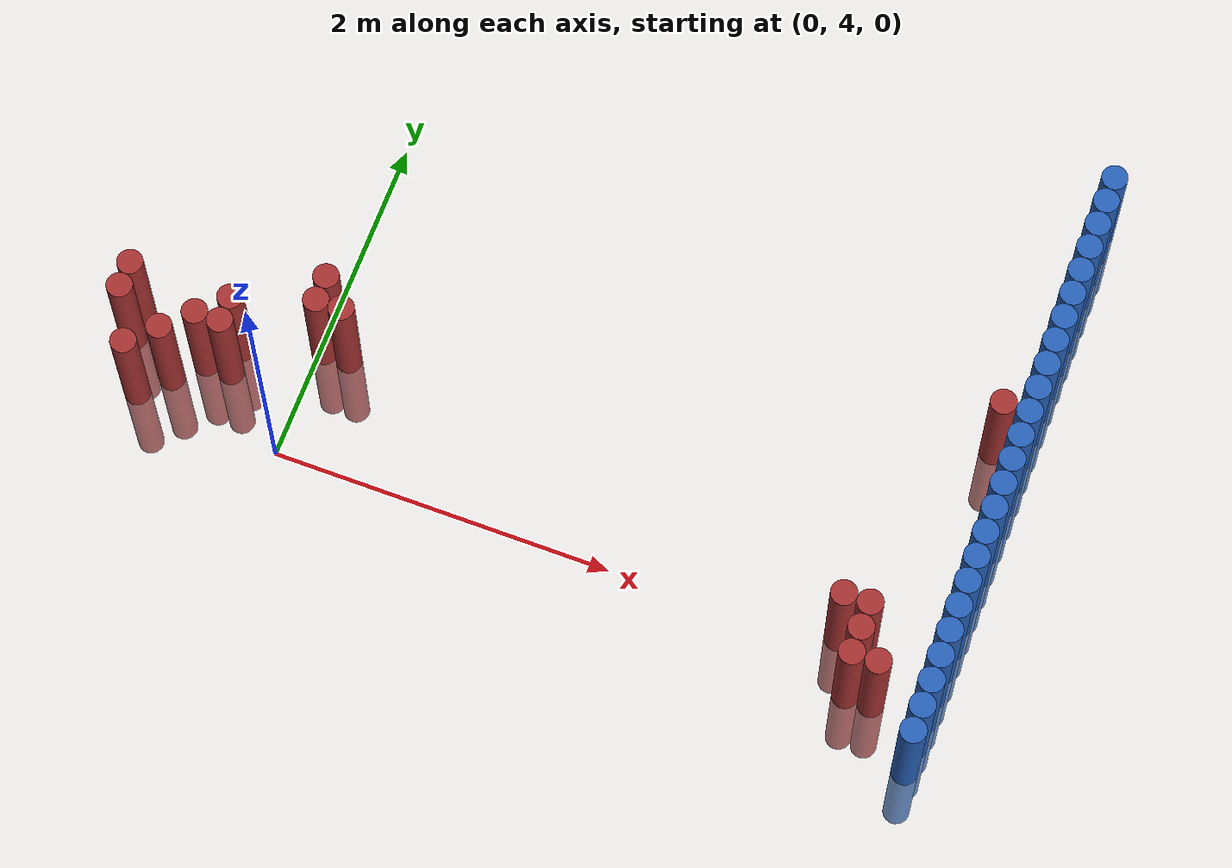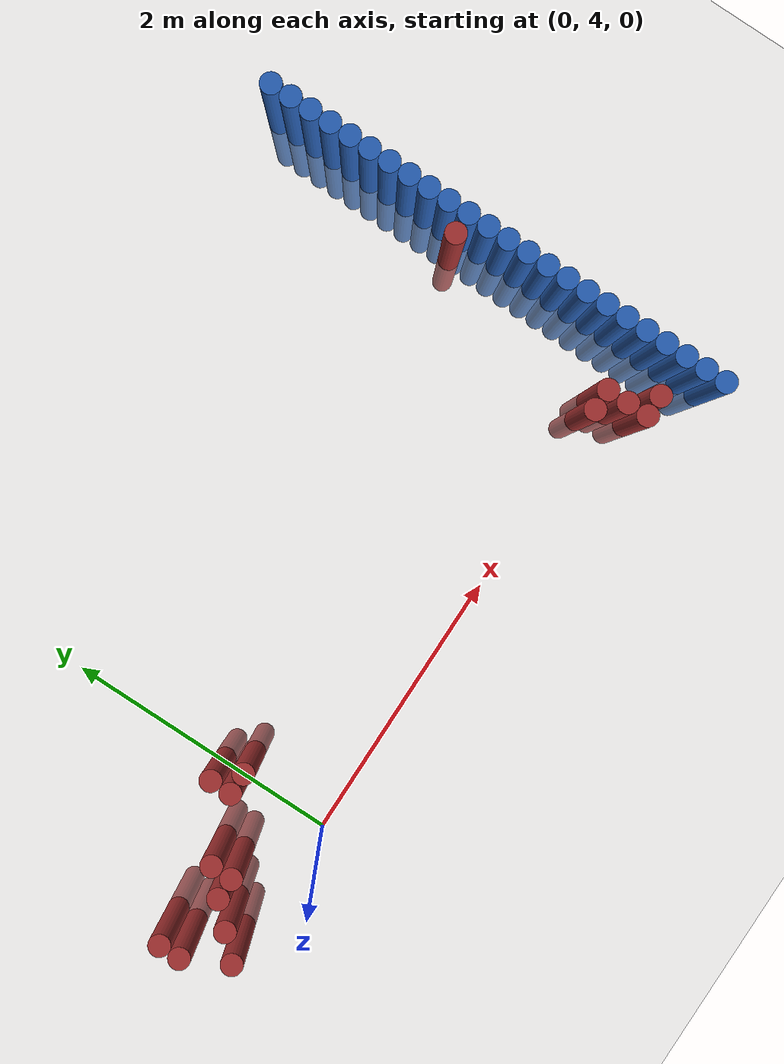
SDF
<sdf version="1.6">
 <world name="default">
  <model name="ground_plane">
   <static>1</static>
   <link name="link">
    <collision name="collision">
     <geometry><plane><normal>0 0 1</normal><size>100 100</size></plane></geometry>
     <surface><friction><ode><mu>100</mu><mu2>50</mu2></ode></friction></surface>
    </collision>
    <visual name="visual">
     <cast_shadows>0</cast_shadows>
     <geometry><plane><normal>0 0 1</normal><size>100 100</size></plane></geometry>
     <material>
      <script><uri>file://media/materials/scripts/gazebo.material</uri><name>Gazebo/Grey</name></script>
     </material>
    </visual>
   </link>
  </model>
  <model name="unit_cylinder_162">
   <static>1</static>
   <pose>3.925000 3.625000 0.000000 0.000000 0.000000 0.000000</pose>
   <link name="link">
    <inertial>
     <mass>1</mass>
     <inertia><ixx>0.145833</ixx><ixy>0</ixy><ixz>0</ixz><iyy>0.145833</iyy><iyz>0</iyz><izz>0.125</izz></inertia>
    </inertial>
    <collision name="collision">
     <geometry><cylinder><radius>0.075000</radius><length>1.5</length></cylinder></geometry>
    </collision>
    <visual name="visual">
     <geometry><cylinder><radius>0.075000</radius><length>1.5</length></cylinder></geometry>
     <material>
      <ambient>0.152000 0.379000 0.720000 1</ambient>
      <diffuse>0.152000 0.379000 0.720000 1</diffuse>
     </material>
     <material>
      <script><name>Gazebo/Grey</name><uri>file://media/materials/scripts/gazebo.material</uri></script>
     </material>
    </visual>
   </link>
  </model>
  <model name="unit_cylinder_164">
   <static>1</static>
   <pose>3.925000 3.775000 0.000000 0.000000 0.000000 0.000000</pose>
   <link name="link">
    <inertial>
     <mass>1</mass>
     <inertia><ixx>0.145833</ixx><ixy>0</ixy><ixz>0</ixz><iyy>0.145833</iyy><iyz>0</iyz><izz>0.125</izz></inertia>
    </inertial>
    <collision name="collision">
     <geometry><cylinder><radius>0.075000</radius><length>1.5</length></cylinder></geometry>
    </collision>
    <visual name="visual">
     <geometry><cylinder><radius>0.075000</radius><length>1.5</length></cylinder></geometry>
     <material>
      <ambient>0.152000 0.379000 0.720000 1</ambient>
      <diffuse>0.152000 0.379000 0.720000 1</diffuse>
     </material>
     <material>
      <script><name>Gazebo/Grey</name><uri>file://media/materials/scripts/gazebo.material</uri></script>
     </material>
    </visual>
   </link>
  </model>
  <model name="unit_cylinder_166">
   <static>1</static>
   <pose>3.925000 3.925000 0.000000 0.000000 0.000000 0.000000</pose>
   <link name="link">
    <inertial>
     <mass>1</mass>
     <inertia><ixx>0.145833</ixx><ixy>0</ixy><ixz>0</ixz><iyy>0.145833</iyy><iyz>0</iyz><izz>0.125</izz></inertia>
    </inertial>
    <collision name="collision">
     <geometry><cylinder><radius>0.075000</radius><length>1.5</length></cylinder></geometry>
    </collision>
    <visual name="visual">
     <geometry><cylinder><radius>0.075000</radius><length>1.5</length></cylinder></geometry>
     <material>
      <ambient>0.152000 0.379000 0.720000 1</ambient>
      <diffuse>0.152000 0.379000 0.720000 1</diffuse>
     </material>
     <material>
      <script><name>Gazebo/Grey</name><uri>file://media/materials/scripts/gazebo.material</uri></script>
     </material>
    </visual>
   </link>
  </model>
  <model name="unit_cylinder_168">
   <static>1</static>
   <pose>3.925000 4.075000 0.000000 0.000000 0.000000 0.000000</pose>
   <link name="link">
    <inertial>
     <mass>1</mass>
     <inertia><ixx>0.145833</ixx><ixy>0</ixy><ixz>0</ixz><iyy>0.145833</iyy><iyz>0</iyz><izz>0.125</izz></inertia>
    </inertial>
    <collision name="collision">
     <geometry><cylinder><radius>0.075000</radius><length>1.5</length></cylinder></geometry>
    </collision>
    <visual name="visual">
     <geometry><cylinder><radius>0.075000</radius><length>1.5</length></cylinder></geometry>
     <material>
      <ambient>0.152000 0.379000 0.720000 1</ambient>
      <diffuse>0.152000 0.379000 0.720000 1</diffuse>
     </material>
     <material>
      <script><name>Gazebo/Grey</name><uri>file://media/materials/scripts/gazebo.material</uri></script>
     </material>
    </visual>
   </link>
  </model>
  <model name="unit_cylinder_170">
   <static>1</static>
   <pose>3.925000 4.225000 0.000000 0.000000 0.000000 0.000000</pose>
   <link name="link">
    <inertial>
     <mass>1</mass>
     <inertia><ixx>0.145833</ixx><ixy>0</ixy><ixz>0</ixz><iyy>0.145833</iyy><iyz>0</iyz><izz>0.125</izz></inertia>
    </inertial>
    <collision name="collision">
     <geometry><cylinder><radius>0.075000</radius><length>1.5</length></cylinder></geometry>
    </collision>
    <visual name="visual">
     <geometry><cylinder><radius>0.075000</radius><length>1.5</length></cylinder></geometry>
     <material>
      <ambient>0.152000 0.379000 0.720000 1</ambient>
      <diffuse>0.152000 0.379000 0.720000 1</diffuse>
     </material>
     <material>
      <script><name>Gazebo/Grey</name><uri>file://media/materials/scripts/gazebo.material</uri></script>
     </material>
    </visual>
   </link>
  </model>
  <model name="unit_cylinder_172">
   <static>1</static>
   <pose>3.925000 4.375000 0.000000 0.000000 0.000000 0.000000</pose>
   <link name="link">
    <inertial>
     <mass>1</mass>
     <inertia><ixx>0.145833</ixx><ixy>0</ixy><ixz>0</ixz><iyy>0.145833</iyy><iyz>0</iyz><izz>0.125</izz></inertia>
    </inertial>
    <collision name="collision">
     <geometry><cylinder><radius>0.075000</radius><length>1.5</length></cylinder></geometry>
    </collision>
    <visual name="visual">
     <geometry><cylinder><radius>0.075000</radius><length>1.5</length></cylinder></geometry>
     <material>
      <ambient>0.152000 0.379000 0.720000 1</ambient>
      <diffuse>0.152000 0.379000 0.720000 1</diffuse>
     </material>
     <material>
      <script><name>Gazebo/Grey</name><uri>file://media/materials/scripts/gazebo.material</uri></script>
     </material>
    </visual>
   </link>
  </model>
  <model name="unit_cylinder_174">
   <static>1</static>
   <pose>3.925000 4.525000 0.000000 0.000000 0.000000 0.000000</pose>
   <link name="link">
    <inertial>
     <mass>1</mass>
     <inertia><ixx>0.145833</ixx><ixy>0</ixy><ixz>0</ixz><iyy>0.145833</iyy><iyz>0</iyz><izz>0.125</izz></inertia>
    </inertial>
    <collision name="collision">
     <geometry><cylinder><radius>0.075000</radius><length>1.5</length></cylinder></geometry>
    </collision>
    <visual name="visual">
     <geometry><cylinder><radius>0.075000</radius><length>1.5</length></cylinder></geometry>
     <material>
      <ambient>0.152000 0.379000 0.720000 1</ambient>
      <diffuse>0.152000 0.379000 0.720000 1</diffuse>
     </material>
     <material>
      <script><name>Gazebo/Grey</name><uri>file://media/materials/scripts/gazebo.material</uri></script>
     </material>
    </visual>
   </link>
  </model>
  <model name="unit_cylinder_176">
   <static>1</static>
   <pose>3.925000 4.675000 0.000000 0.000000 0.000000 0.000000</pose>
   <link name="link">
    <inertial>
     <mass>1</mass>
     <inertia><ixx>0.145833</ixx><ixy>0</ixy><ixz>0</ixz><iyy>0.145833</iyy><iyz>0</iyz><izz>0.125</izz></inertia>
    </inertial>
    <collision name="collision">
     <geometry><cylinder><radius>0.075000</radius><length>1.5</length></cylinder></geometry>
    </collision>
    <visual name="visual">
     <geometry><cylinder><radius>0.075000</radius><length>1.5</length></cylinder></geometry>
     <material>
      <ambient>0.152000 0.379000 0.720000 1</ambient>
      <diffuse>0.152000 0.379000 0.720000 1</diffuse>
     </material>
     <material>
      <script><name>Gazebo/Grey</name><uri>file://media/materials/scripts/gazebo.material</uri></script>
     </material>
    </visual>
   </link>
  </model>
  <model name="unit_cylinder_178">
   <static>1</static>
   <pose>3.925000 4.825000 0.000000 0.000000 0.000000 0.000000</pose>
   <link name="link">
    <inertial>
     <mass>1</mass>
     <inertia><ixx>0.145833</ixx><ixy>0</ixy><ixz>0</ixz><iyy>0.145833</iyy><iyz>0</iyz><izz>0.125</izz></inertia>
    </inertial>
    <collision name="collision">
     <geometry><cylinder><radius>0.075000</radius><length>1.5</length></cylinder></geometry>
    </collision>
    <visual name="visual">
     <geometry><cylinder><radius>0.075000</radius><length>1.5</length></cylinder></geometry>
     <material>
      <ambient>0.152000 0.379000 0.720000 1</ambient>
      <diffuse>0.152000 0.379000 0.720000 1</diffuse>
     </material>
     <material>
      <script><name>Gazebo/Grey</name><uri>file://media/materials/scripts/gazebo.material</uri></script>
     </material>
    </visual>
   </link>
  </model>
  <model name="unit_cylinder_180">
   <static>1</static>
   <pose>3.925000 4.975000 0.000000 0.000000 0.000000 0.000000</pose>
   <link name="link">
    <inertial>
     <mass>1</mass>
     <inertia><ixx>0.145833</ixx><ixy>0</ixy><ixz>0</ixz><iyy>0.145833</iyy><iyz>0</iyz><izz>0.125</izz></inertia>
    </inertial>
    <collision name="collision">
     <geometry><cylinder><radius>0.075000</radius><length>1.5</length></cylinder></geometry>
    </collision>
    <visual name="visual">
     <geometry><cylinder><radius>0.075000</radius><length>1.5</length></cylinder></geometry>
     <material>
      <ambient>0.152000 0.379000 0.720000 1</ambient>
      <diffuse>0.152000 0.379000 0.720000 1</diffuse>
     </material>
     <material>
      <script><name>Gazebo/Grey</name><uri>file://media/materials/scripts/gazebo.material</uri></script>
     </material>
    </visual>
   </link>
  </model>
  <model name="unit_cylinder_182">
   <static>1</static>
   <pose>3.925000 5.125000 0.000000 0.000000 0.000000 0.000000</pose>
   <link name="link">
    <inertial>
     <mass>1</mass>
     <inertia><ixx>0.145833</ixx><ixy>0</ixy><ixz>0</ixz><iyy>0.145833</iyy><iyz>0</iyz><izz>0.125</izz></inertia>
    </inertial>
    <collision name="collision">
     <geometry><cylinder><radius>0.075000</radius><length>1.5</length></cylinder></geometry>
    </collision>
    <visual name="visual">
     <geometry><cylinder><radius>0.075000</radius><length>1.5</length></cylinder></geometry>
     <material>
      <ambient>0.152000 0.379000 0.720000 1</ambient>
      <diffuse>0.152000 0.379000 0.720000 1</diffuse>
     </material>
     <material>
      <script><name>Gazebo/Grey</name><uri>file://media/materials/scripts/gazebo.material</uri></script>
     </material>
    </visual>
   </link>
  </model>
  <model name="unit_cylinder_184">
   <static>1</static>
   <pose>3.925000 5.275000 0.000000 0.000000 0.000000 0.000000</pose>
   <link name="link">
    <inertial>
     <mass>1</mass>
     <inertia><ixx>0.145833</ixx><ixy>0</ixy><ixz>0</ixz><iyy>0.145833</iyy><iyz>0</iyz><izz>0.125</izz></inertia>
    </inertial>
    <collision name="collision">
     <geometry><cylinder><radius>0.075000</radius><length>1.5</length></cylinder></geometry>
    </collision>
    <visual name="visual">
     <geometry><cylinder><radius>0.075000</radius><length>1.5</length></cylinder></geometry>
     <material>
      <ambient>0.152000 0.379000 0.720000 1</ambient>
      <diffuse>0.152000 0.379000 0.720000 1</diffuse>
     </material>
     <material>
      <script><name>Gazebo/Grey</name><uri>file://media/materials/scripts/gazebo.material</uri></script>
     </material>
    </visual>
   </link>
  </model>
  <model name="unit_cylinder_186">
   <static>1</static>
   <pose>3.925000 5.425000 0.000000 0.000000 0.000000 0.000000</pose>
   <link name="link">
    <inertial>
     <mass>1</mass>
     <inertia><ixx>0.145833</ixx><ixy>0</ixy><ixz>0</ixz><iyy>0.145833</iyy><iyz>0</iyz><izz>0.125</izz></inertia>
    </inertial>
    <collision name="collision">
     <geometry><cylinder><radius>0.075000</radius><length>1.5</length></cylinder></geometry>
    </collision>
    <visual name="visual">
     <geometry><cylinder><radius>0.075000</radius><length>1.5</length></cylinder></geometry>
     <material>
      <ambient>0.152000 0.379000 0.720000 1</ambient>
      <diffuse>0.152000 0.379000 0.720000 1</diffuse>
     </material>
     <material>
      <script><name>Gazebo/Grey</name><uri>file://media/materials/scripts/gazebo.material</uri></script>
     </material>
    </visual>
   </link>
  </model>
  <model name="unit_cylinder_188">
   <static>1</static>
   <pose>3.925000 5.575000 0.000000 0.000000 0.000000 0.000000</pose>
   <link name="link">
    <inertial>
     <mass>1</mass>
     <inertia><ixx>0.145833</ixx><ixy>0</ixy><ixz>0</ixz><iyy>0.145833</iyy><iyz>0</iyz><izz>0.125</izz></inertia>
    </inertial>
    <collision name="collision">
     <geometry><cylinder><radius>0.075000</radius><length>1.5</length></cylinder></geometry>
    </collision>
    <visual name="visual">
     <geometry><cylinder><radius>0.075000</radius><length>1.5</length></cylinder></geometry>
     <material>
      <ambient>0.152000 0.379000 0.720000 1</ambient>
      <diffuse>0.152000 0.379000 0.720000 1</diffuse>
     </material>
     <material>
      <script><name>Gazebo/Grey</name><uri>file://media/materials/scripts/gazebo.material</uri></script>
     </material>
    </visual>
   </link>
  </model>
  <model name="unit_cylinder_190">
   <static>1</static>
   <pose>3.925000 5.725000 0.000000 0.000000 0.000000 0.000000</pose>
   <link name="link">
    <inertial>
     <mass>1</mass>
     <inertia><ixx>0.145833</ixx><ixy>0</ixy><ixz>0</ixz><iyy>0.145833</iyy><iyz>0</iyz><izz>0.125</izz></inertia>
    </inertial>
    <collision name="collision">
     <geometry><cylinder><radius>0.075000</radius><length>1.5</length></cylinder></geometry>
    </collision>
    <visual name="visual">
     <geometry><cylinder><radius>0.075000</radius><length>1.5</length></cylinder></geometry>
     <material>
      <ambient>0.152000 0.379000 0.720000 1</ambient>
      <diffuse>0.152000 0.379000 0.720000 1</diffuse>
     </material>
     <material>
      <script><name>Gazebo/Grey</name><uri>file://media/materials/scripts/gazebo.material</uri></script>
     </material>
    </visual>
   </link>
  </model>
  <model name="unit_cylinder_192">
   <static>1</static>
   <pose>3.925000 5.875000 0.000000 0.000000 0.000000 0.000000</pose>
   <link name="link">
    <inertial>
     <mass>1</mass>
     <inertia><ixx>0.145833</ixx><ixy>0</ixy><ixz>0</ixz><iyy>0.145833</iyy><iyz>0</iyz><izz>0.125</izz></inertia>
    </inertial>
    <collision name="collision">
     <geometry><cylinder><radius>0.075000</radius><length>1.5</length></cylinder></geometry>
    </collision>
    <visual name="visual">
     <geometry><cylinder><radius>0.075000</radius><length>1.5</length></cylinder></geometry>
     <material>
      <ambient>0.152000 0.379000 0.720000 1</ambient>
      <diffuse>0.152000 0.379000 0.720000 1</diffuse>
     </material>
     <material>
      <script><name>Gazebo/Grey</name><uri>file://media/materials/scripts/gazebo.material</uri></script>
     </material>
    </visual>
   </link>
  </model>
  <model name="unit_cylinder_194">
   <static>1</static>
   <pose>3.925000 6.025000 0.000000 0.000000 0.000000 0.000000</pose>
   <link name="link">
    <inertial>
     <mass>1</mass>
     <inertia><ixx>0.145833</ixx><ixy>0</ixy><ixz>0</ixz><iyy>0.145833</iyy><iyz>0</iyz><izz>0.125</izz></inertia>
    </inertial>
    <collision name="collision">
     <geometry><cylinder><radius>0.075000</radius><length>1.5</length></cylinder></geometry>
    </collision>
    <visual name="visual">
     <geometry><cylinder><radius>0.075000</radius><length>1.5</length></cylinder></geometry>
     <material>
      <ambient>0.152000 0.379000 0.720000 1</ambient>
      <diffuse>0.152000 0.379000 0.720000 1</diffuse>
     </material>
     <material>
      <script><name>Gazebo/Grey</name><uri>file://media/materials/scripts/gazebo.material</uri></script>
     </material>
    </visual>
   </link>
  </model>
  <model name="unit_cylinder_196">
   <static>1</static>
   <pose>3.925000 6.175000 0.000000 0.000000 0.000000 0.000000</pose>
   <link name="link">
    <inertial>
     <mass>1</mass>
     <inertia><ixx>0.145833</ixx><ixy>0</ixy><ixz>0</ixz><iyy>0.145833</iyy><iyz>0</iyz><izz>0.125</izz></inertia>
    </inertial>
    <collision name="collision">
     <geometry><cylinder><radius>0.075000</radius><length>1.5</length></cylinder></geometry>
    </collision>
    <visual name="visual">
     <geometry><cylinder><radius>0.075000</radius><length>1.5</length></cylinder></geometry>
     <material>
      <ambient>0.152000 0.379000 0.720000 1</ambient>
      <diffuse>0.152000 0.379000 0.720000 1</diffuse>
     </material>
     <material>
      <script><name>Gazebo/Grey</name><uri>file://media/materials/scripts/gazebo.material</uri></script>
     </material>
    </visual>
   </link>
  </model>
  <model name="unit_cylinder_198">
   <static>1</static>
   <pose>3.925000 6.325000 0.000000 0.000000 0.000000 0.000000</pose>
   <link name="link">
    <inertial>
     <mass>1</mass>
     <inertia><ixx>0.145833</ixx><ixy>0</ixy><ixz>0</ixz><iyy>0.145833</iyy><iyz>0</iyz><izz>0.125</izz></inertia>
    </inertial>
    <collision name="collision">
     <geometry><cylinder><radius>0.075000</radius><length>1.5</length></cylinder></geometry>
    </collision>
    <visual name="visual">
     <geometry><cylinder><radius>0.075000</radius><length>1.5</length></cylinder></geometry>
     <material>
      <ambient>0.152000 0.379000 0.720000 1</ambient>
      <diffuse>0.152000 0.379000 0.720000 1</diffuse>
     </material>
     <material>
      <script><name>Gazebo/Grey</name><uri>file://media/materials/scripts/gazebo.material</uri></script>
     </material>
    </visual>
   </link>
  </model>
  <model name="unit_cylinder_200">
   <static>1</static>
   <pose>3.925000 6.475000 0.000000 0.000000 0.000000 0.000000</pose>
   <link name="link">
    <inertial>
     <mass>1</mass>
     <inertia><ixx>0.145833</ixx><ixy>0</ixy><ixz>0</ixz><iyy>0.145833</iyy><iyz>0</iyz><izz>0.125</izz></inertia>
    </inertial>
    <collision name="collision">
     <geometry><cylinder><radius>0.075000</radius><length>1.5</length></cylinder></geometry>
    </collision>
    <visual name="visual">
     <geometry><cylinder><radius>0.075000</radius><length>1.5</length></cylinder></geometry>
     <material>
      <ambient>0.152000 0.379000 0.720000 1</ambient>
      <diffuse>0.152000 0.379000 0.720000 1</diffuse>
     </material>
     <material>
      <script><name>Gazebo/Grey</name><uri>file://media/materials/scripts/gazebo.material</uri></script>
     </material>
    </visual>
   </link>
  </model>
  <model name="unit_cylinder_202">
   <static>1</static>
   <pose>3.925000 6.625000 0.000000 0.000000 0.000000 0.000000</pose>
   <link name="link">
    <inertial>
     <mass>1</mass>
     <inertia><ixx>0.145833</ixx><ixy>0</ixy><ixz>0</ixz><iyy>0.145833</iyy><iyz>0</iyz><izz>0.125</izz></inertia>
    </inertial>
    <collision name="collision">
     <geometry><cylinder><radius>0.075000</radius><length>1.5</length></cylinder></geometry>
    </collision>
    <visual name="visual">
     <geometry><cylinder><radius>0.075000</radius><length>1.5</length></cylinder></geometry>
     <material>
      <ambient>0.152000 0.379000 0.720000 1</ambient>
      <diffuse>0.152000 0.379000 0.720000 1</diffuse>
     </material>
     <material>
      <script><name>Gazebo/Grey</name><uri>file://media/materials/scripts/gazebo.material</uri></script>
     </material>
    </visual>
   </link>
  </model>
  <model name="unit_cylinder_204">
   <static>1</static>
   <pose>3.925000 6.775000 0.000000 0.000000 0.000000 0.000000</pose>
   <link name="link">
    <inertial>
     <mass>1</mass>
     <inertia><ixx>0.145833</ixx><ixy>0</ixy><ixz>0</ixz><iyy>0.145833</iyy><iyz>0</iyz><izz>0.125</izz></inertia>
    </inertial>
    <collision name="collision">
     <geometry><cylinder><radius>0.075000</radius><length>1.5</length></cylinder></geometry>
    </collision>
    <visual name="visual">
     <geometry><cylinder><radius>0.075000</radius><length>1.5</length></cylinder></geometry>
     <material>
      <ambient>0.152000 0.379000 0.720000 1</ambient>
      <diffuse>0.152000 0.379000 0.720000 1</diffuse>
     </material>
     <material>
      <script><name>Gazebo/Grey</name><uri>file://media/materials/scripts/gazebo.material</uri></script>
     </material>
    </visual>
   </link>
  </model>
  <model name="unit_cylinder_206">
   <static>1</static>
   <pose>3.925000 6.925000 0.000000 0.000000 0.000000 0.000000</pose>
   <link name="link">
    <inertial>
     <mass>1</mass>
     <inertia><ixx>0.145833</ixx><ixy>0</ixy><ixz>0</ixz><iyy>0.145833</iyy><iyz>0</iyz><izz>0.125</izz></inertia>
    </inertial>
    <collision name="collision">
     <geometry><cylinder><radius>0.075000</radius><length>1.5</length></cylinder></geometry>
    </collision>
    <visual name="visual">
     <geometry><cylinder><radius>0.075000</radius><length>1.5</length></cylinder></geometry>
     <material>
      <ambient>0.152000 0.379000 0.720000 1</ambient>
      <diffuse>0.152000 0.379000 0.720000 1</diffuse>
     </material>
     <material>
      <script><name>Gazebo/Grey</name><uri>file://media/materials/scripts/gazebo.material</uri></script>
     </material>
    </visual>
   </link>
  </model>
  <model name="unit_cylinder_304">
   <static>1</static>
   <pose>-1.025000 4.375000 0.000000 0.000000 0.000000 0.000000</pose>
   <link name="link">
    <inertial>
     <mass>1</mass>
     <inertia><ixx>0.145833</ixx><ixy>0</ixy><ixz>0</ixz><iyy>0.145833</iyy><iyz>0</iyz><izz>0.125</izz></inertia>
    </inertial>
    <collision name="collision">
     <geometry><cylinder><radius>0.075000</radius><length>1.5</length></cylinder></geometry>
    </collision>
    <visual name="visual">
     <geometry><cylinder><radius>0.075000</radius><length>1.5</length></cylinder></geometry>
     <material>
      <ambient>0.648000 0.192000 0.192000 1</ambient>
      <diffuse>0.648000 0.192000 0.192000 1</diffuse>
     </material>
     <material>
      <script><name>Gazebo/Grey</name><uri>file://media/materials/scripts/gazebo.material</uri></script>
     </material>
    </visual>
   </link>
  </model>
  <model name="unit_cylinder_305">
   <static>1</static>
   <pose>-1.025000 4.525000 0.000000 0.000000 0.000000 0.000000</pose>
   <link name="link">
    <inertial>
     <mass>1</mass>
     <inertia><ixx>0.145833</ixx><ixy>0</ixy><ixz>0</ixz><iyy>0.145833</iyy><iyz>0</iyz><izz>0.125</izz></inertia>
    </inertial>
    <collision name="collision">
     <geometry><cylinder><radius>0.075000</radius><length>1.5</length></cylinder></geometry>
    </collision>
    <visual name="visual">
     <geometry><cylinder><radius>0.075000</radius><length>1.5</length></cylinder></geometry>
     <material>
      <ambient>0.648000 0.192000 0.192000 1</ambient>
      <diffuse>0.648000 0.192000 0.192000 1</diffuse>
     </material>
     <material>
      <script><name>Gazebo/Grey</name><uri>file://media/materials/scripts/gazebo.material</uri></script>
     </material>
    </visual>
   </link>
  </model>
  <model name="unit_cylinder_310">
   <static>1</static>
   <pose>-0.875000 4.075000 0.000000 0.000000 0.000000 0.000000</pose>
   <link name="link">
    <inertial>
     <mass>1</mass>
     <inertia><ixx>0.145833</ixx><ixy>0</ixy><ixz>0</ixz><iyy>0.145833</iyy><iyz>0</iyz><izz>0.125</izz></inertia>
    </inertial>
    <collision name="collision">
     <geometry><cylinder><radius>0.075000</radius><length>1.5</length></cylinder></geometry>
    </collision>
    <visual name="visual">
     <geometry><cylinder><radius>0.075000</radius><length>1.5</length></cylinder></geometry>
     <material>
      <ambient>0.648000 0.192000 0.192000 1</ambient>
      <diffuse>0.648000 0.192000 0.192000 1</diffuse>
     </material>
     <material>
      <script><name>Gazebo/Grey</name><uri>file://media/materials/scripts/gazebo.material</uri></script>
     </material>
    </visual>
   </link>
  </model>
  <model name="unit_cylinder_313">
   <static>1</static>
   <pose>-0.725000 4.225000 0.000000 0.000000 0.000000 0.000000</pose>
   <link name="link">
    <inertial>
     <mass>1</mass>
     <inertia><ixx>0.145833</ixx><ixy>0</ixy><ixz>0</ixz><iyy>0.145833</iyy><iyz>0</iyz><izz>0.125</izz></inertia>
    </inertial>
    <collision name="collision">
     <geometry><cylinder><radius>0.075000</radius><length>1.5</length></cylinder></geometry>
    </collision>
    <visual name="visual">
     <geometry><cylinder><radius>0.075000</radius><length>1.5</length></cylinder></geometry>
     <material>
      <ambient>0.648000 0.192000 0.192000 1</ambient>
      <diffuse>0.648000 0.192000 0.192000 1</diffuse>
     </material>
     <material>
      <script><name>Gazebo/Grey</name><uri>file://media/materials/scripts/gazebo.material</uri></script>
     </material>
    </visual>
   </link>
  </model>
  <model name="unit_cylinder_314">
   <static>1</static>
   <pose>-0.575000 4.375000 0.000000 0.000000 0.000000 0.000000</pose>
   <link name="link">
    <inertial>
     <mass>1</mass>
     <inertia><ixx>0.145833</ixx><ixy>0</ixy><ixz>0</ixz><iyy>0.145833</iyy><iyz>0</iyz><izz>0.125</izz></inertia>
    </inertial>
    <collision name="collision">
     <geometry><cylinder><radius>0.075000</radius><length>1.5</length></cylinder></geometry>
    </collision>
    <visual name="visual">
     <geometry><cylinder><radius>0.075000</radius><length>1.5</length></cylinder></geometry>
     <material>
      <ambient>0.648000 0.192000 0.192000 1</ambient>
      <diffuse>0.648000 0.192000 0.192000 1</diffuse>
     </material>
     <material>
      <script><name>Gazebo/Grey</name><uri>file://media/materials/scripts/gazebo.material</uri></script>
     </material>
    </visual>
   </link>
  </model>
  <model name="unit_cylinder_316">
   <static>1</static>
   <pose>-0.425000 4.375000 0.000000 0.000000 0.000000 0.000000</pose>
   <link name="link">
    <inertial>
     <mass>1</mass>
     <inertia><ixx>0.145833</ixx><ixy>0</ixy><ixz>0</ixz><iyy>0.145833</iyy><iyz>0</iyz><izz>0.125</izz></inertia>
    </inertial>
    <collision name="collision">
     <geometry><cylinder><radius>0.075000</radius><length>1.5</length></cylinder></geometry>
    </collision>
    <visual name="visual">
     <geometry><cylinder><radius>0.075000</radius><length>1.5</length></cylinder></geometry>
     <material>
      <ambient>0.648000 0.192000 0.192000 1</ambient>
      <diffuse>0.648000 0.192000 0.192000 1</diffuse>
     </material>
     <material>
      <script><name>Gazebo/Grey</name><uri>file://media/materials/scripts/gazebo.material</uri></script>
     </material>
    </visual>
   </link>
  </model>
  <model name="unit_cylinder_317">
   <static>1</static>
   <pose>-0.425000 4.525000 0.000000 0.000000 0.000000 0.000000</pose>
   <link name="link">
    <inertial>
     <mass>1</mass>
     <inertia><ixx>0.145833</ixx><ixy>0</ixy><ixz>0</ixz><iyy>0.145833</iyy><iyz>0</iyz><izz>0.125</izz></inertia>
    </inertial>
    <collision name="collision">
     <geometry><cylinder><radius>0.075000</radius><length>1.5</length></cylinder></geometry>
    </collision>
    <visual name="visual">
     <geometry><cylinder><radius>0.075000</radius><length>1.5</length></cylinder></geometry>
     <material>
      <ambient>0.648000 0.192000 0.192000 1</ambient>
      <diffuse>0.648000 0.192000 0.192000 1</diffuse>
     </material>
     <material>
      <script><name>Gazebo/Grey</name><uri>file://media/materials/scripts/gazebo.material</uri></script>
     </material>
    </visual>
   </link>
  </model>
  <model name="unit_cylinder_328">
   <static>1</static>
   <pose>0.025000 4.675000 0.000000 0.000000 0.000000 0.000000</pose>
   <link name="link">
    <inertial>
     <mass>1</mass>
     <inertia><ixx>0.145833</ixx><ixy>0</ixy><ixz>0</ixz><iyy>0.145833</iyy><iyz>0</iyz><izz>0.125</izz></inertia>
    </inertial>
    <collision name="collision">
     <geometry><cylinder><radius>0.075000</radius><length>1.5</length></cylinder></geometry>
    </collision>
    <visual name="visual">
     <geometry><cylinder><radius>0.075000</radius><length>1.5</length></cylinder></geometry>
     <material>
      <ambient>0.648000 0.192000 0.192000 1</ambient>
      <diffuse>0.648000 0.192000 0.192000 1</diffuse>
     </material>
     <material>
      <script><name>Gazebo/Grey</name><uri>file://media/materials/scripts/gazebo.material</uri></script>
     </material>
    </visual>
   </link>
  </model>
  <model name="unit_cylinder_329">
   <static>1</static>
   <pose>0.025000 4.825000 0.000000 0.000000 0.000000 0.000000</pose>
   <link name="link">
    <inertial>
     <mass>1</mass>
     <inertia><ixx>0.145833</ixx><ixy>0</ixy><ixz>0</ixz><iyy>0.145833</iyy><iyz>0</iyz><izz>0.125</izz></inertia>
    </inertial>
    <collision name="collision">
     <geometry><cylinder><radius>0.075000</radius><length>1.5</length></cylinder></geometry>
    </collision>
    <visual name="visual">
     <geometry><cylinder><radius>0.075000</radius><length>1.5</length></cylinder></geometry>
     <material>
      <ambient>0.648000 0.192000 0.192000 1</ambient>
      <diffuse>0.648000 0.192000 0.192000 1</diffuse>
     </material>
     <material>
      <script><name>Gazebo/Grey</name><uri>file://media/materials/scripts/gazebo.material</uri></script>
     </material>
    </visual>
   </link>
  </model>
  <model name="unit_cylinder_333">
   <static>1</static>
   <pose>0.175000 4.675000 0.000000 0.000000 0.000000 0.000000</pose>
   <link name="link">
    <inertial>
     <mass>1</mass>
     <inertia><ixx>0.145833</ixx><ixy>0</ixy><ixz>0</ixz><iyy>0.145833</iyy><iyz>0</iyz><izz>0.125</izz></inertia>
    </inertial>
    <collision name="collision">
     <geometry><cylinder><radius>0.075000</radius><length>1.5</length></cylinder></geometry>
    </collision>
    <visual name="visual">
     <geometry><cylinder><radius>0.075000</radius><length>1.5</length></cylinder></geometry>
     <material>
      <ambient>0.648000 0.192000 0.192000 1</ambient>
      <diffuse>0.648000 0.192000 0.192000 1</diffuse>
     </material>
     <material>
      <script><name>Gazebo/Grey</name><uri>file://media/materials/scripts/gazebo.material</uri></script>
     </material>
    </visual>
   </link>
  </model>
  <model name="unit_cylinder_357">
   <static>1</static>
   <pose>3.325000 4.075000 0.000000 0.000000 0.000000 0.000000</pose>
   <link name="link">
    <inertial>
     <mass>1</mass>
     <inertia><ixx>0.145833</ixx><ixy>0</ixy><ixz>0</ixz><iyy>0.145833</iyy><iyz>0</iyz><izz>0.125</izz></inertia>
    </inertial>
    <collision name="collision">
     <geometry><cylinder><radius>0.075000</radius><length>1.5</length></cylinder></geometry>
    </collision>
    <visual name="visual">
     <geometry><cylinder><radius>0.075000</radius><length>1.5</length></cylinder></geometry>
     <material>
      <ambient>0.648000 0.192000 0.192000 1</ambient>
      <diffuse>0.648000 0.192000 0.192000 1</diffuse>
     </material>
     <material>
      <script><name>Gazebo/Grey</name><uri>file://media/materials/scripts/gazebo.material</uri></script>
     </material>
    </visual>
   </link>
  </model>
  <model name="unit_cylinder_358">
   <static>1</static>
   <pose>3.475000 3.775000 0.000000 0.000000 0.000000 0.000000</pose>
   <link name="link">
    <inertial>
     <mass>1</mass>
     <inertia><ixx>0.145833</ixx><ixy>0</ixy><ixz>0</ixz><iyy>0.145833</iyy><iyz>0</iyz><izz>0.125</izz></inertia>
    </inertial>
    <collision name="collision">
     <geometry><cylinder><radius>0.075000</radius><length>1.5</length></cylinder></geometry>
    </collision>
    <visual name="visual">
     <geometry><cylinder><radius>0.075000</radius><length>1.5</length></cylinder></geometry>
     <material>
      <ambient>0.648000 0.192000 0.192000 1</ambient>
      <diffuse>0.648000 0.192000 0.192000 1</diffuse>
     </material>
     <material>
      <script><name>Gazebo/Grey</name><uri>file://media/materials/scripts/gazebo.material</uri></script>
     </material>
    </visual>
   </link>
  </model>
  <model name="unit_cylinder_359">
   <static>1</static>
   <pose>3.475000 3.925000 0.000000 0.000000 0.000000 0.000000</pose>
   <link name="link">
    <inertial>
     <mass>1</mass>
     <inertia><ixx>0.145833</ixx><ixy>0</ixy><ixz>0</ixz><iyy>0.145833</iyy><iyz>0</iyz><izz>0.125</izz></inertia>
    </inertial>
    <collision name="collision">
     <geometry><cylinder><radius>0.075000</radius><length>1.5</length></cylinder></geometry>
    </collision>
    <visual name="visual">
     <geometry><cylinder><radius>0.075000</radius><length>1.5</length></cylinder></geometry>
     <material>
      <ambient>0.648000 0.192000 0.192000 1</ambient>
      <diffuse>0.648000 0.192000 0.192000 1</diffuse>
     </material>
     <material>
      <script><name>Gazebo/Grey</name><uri>file://media/materials/scripts/gazebo.material</uri></script>
     </material>
    </visual>
   </link>
  </model>
  <model name="unit_cylinder_360">
   <static>1</static>
   <pose>3.475000 4.075000 0.000000 0.000000 0.000000 0.000000</pose>
   <link name="link">
    <inertial>
     <mass>1</mass>
     <inertia><ixx>0.145833</ixx><ixy>0</ixy><ixz>0</ixz><iyy>0.145833</iyy><iyz>0</iyz><izz>0.125</izz></inertia>
    </inertial>
    <collision name="collision">
     <geometry><cylinder><radius>0.075000</radius><length>1.5</length></cylinder></geometry>
    </collision>
    <visual name="visual">
     <geometry><cylinder><radius>0.075000</radius><length>1.5</length></cylinder></geometry>
     <material>
      <ambient>0.648000 0.192000 0.192000 1</ambient>
      <diffuse>0.648000 0.192000 0.192000 1</diffuse>
     </material>
     <material>
      <script><name>Gazebo/Grey</name><uri>file://media/materials/scripts/gazebo.material</uri></script>
     </material>
    </visual>
   </link>
  </model>
  <model name="unit_cylinder_361">
   <static>1</static>
   <pose>3.625000 3.775000 0.000000 0.000000 0.000000 0.000000</pose>
   <link name="link">
    <inertial>
     <mass>1</mass>
     <inertia><ixx>0.145833</ixx><ixy>0</ixy><ixz>0</ixz><iyy>0.145833</iyy><iyz>0</iyz><izz>0.125</izz></inertia>
    </inertial>
    <collision name="collision">
     <geometry><cylinder><radius>0.075000</radius><length>1.5</length></cylinder></geometry>
    </collision>
    <visual name="visual">
     <geometry><cylinder><radius>0.075000</radius><length>1.5</length></cylinder></geometry>
     <material>
      <ambient>0.648000 0.192000 0.192000 1</ambient>
      <diffuse>0.648000 0.192000 0.192000 1</diffuse>
     </material>
     <material>
      <script><name>Gazebo/Grey</name><uri>file://media/materials/scripts/gazebo.material</uri></script>
     </material>
    </visual>
   </link>
  </model>
  <model name="unit_cylinder_373">
   <static>1</static>
   <pose>3.775000 5.425000 0.000000 0.000000 0.000000 0.000000</pose>
   <link name="link">
    <inertial>
     <mass>1</mass>
     <inertia><ixx>0.145833</ixx><ixy>0</ixy><ixz>0</ixz><iyy>0.145833</iyy><iyz>0</iyz><izz>0.125</izz></inertia>
    </inertial>
    <collision name="collision">
     <geometry><cylinder><radius>0.075000</radius><length>1.5</length></cylinder></geometry>
    </collision>
    <visual name="visual">
     <geometry><cylinder><radius>0.075000</radius><length>1.5</length></cylinder></geometry>
     <material>
      <ambient>0.648000 0.192000 0.192000 1</ambient>
      <diffuse>0.648000 0.192000 0.192000 1</diffuse>
     </material>
     <material>
      <script><name>Gazebo/Grey</name><uri>file://media/materials/scripts/gazebo.material</uri></script>
     </material>
    </visual>
   </link>
  </model>
  <model name="unit_cylinder_410">
   <static>1</static>
   <pose>3.925000 3.475000 0.000000 0.000000 0.000000 0.000000</pose>
   <link name="link">
    <inertial>
     <mass>1</mass>
     <inertia><ixx>0.145833</ixx><ixy>0</ixy><ixz>0</ixz><iyy>0.145833</iyy><iyz>0</iyz><izz>0.125</izz></inertia>
    </inertial>
    <collision name="collision">
     <geometry><cylinder><radius>0.075000</radius><length>1.5</length></cylinder></geometry>
    </collision>
    <visual name="visual">
     <geometry><cylinder><radius>0.075000</radius><length>1.5</length></cylinder></geometry>
     <material>
      <ambient>0.152000 0.379000 0.720000 1</ambient>
      <diffuse>0.152000 0.379000 0.720000 1</diffuse>
     </material>
     <material>
      <script><name>Gazebo/Grey</name><uri>file://media/materials/scripts/gazebo.material</uri></script>
     </material>
    </visual>
   </link>
  </model>
  <model name="unit_cylinder_411">
   <static>1</static>
   <pose>3.925000 3.625000 0.000000 0.000000 0.000000 0.000000</pose>
   <link name="link">
    <inertial>
     <mass>1</mass>
     <inertia><ixx>0.145833</ixx><ixy>0</ixy><ixz>0</ixz><iyy>0.145833</iyy><iyz>0</iyz><izz>0.125</izz></inertia>
    </inertial>
    <collision name="collision">
     <geometry><cylinder><radius>0.075000</radius><length>1.5</length></cylinder></geometry>
    </collision>
    <visual name="visual">
     <geometry><cylinder><radius>0.075000</radius><length>1.5</length></cylinder></geometry>
     <material>
      <ambient>0.152000 0.379000 0.720000 1</ambient>
      <diffuse>0.152000 0.379000 0.720000 1</diffuse>
     </material>
     <material>
      <script><name>Gazebo/Grey</name><uri>file://media/materials/scripts/gazebo.material</uri></script>
     </material>
    </visual>
   </link>
  </model>
  <model name="unit_cylinder_412">
   <static>1</static>
   <pose>3.925000 3.775000 0.000000 0.000000 0.000000 0.000000</pose>
   <link name="link">
    <inertial>
     <mass>1</mass>
     <inertia><ixx>0.145833</ixx><ixy>0</ixy><ixz>0</ixz><iyy>0.145833</iyy><iyz>0</iyz><izz>0.125</izz></inertia>
    </inertial>
    <collision name="collision">
     <geometry><cylinder><radius>0.075000</radius><length>1.5</length></cylinder></geometry>
    </collision>
    <visual name="visual">
     <geometry><cylinder><radius>0.075000</radius><length>1.5</length></cylinder></geometry>
     <material>
      <ambient>0.152000 0.379000 0.720000 1</ambient>
      <diffuse>0.152000 0.379000 0.720000 1</diffuse>
     </material>
     <material>
      <script><name>Gazebo/Grey</name><uri>file://media/materials/scripts/gazebo.material</uri></script>
     </material>
    </visual>
   </link>
  </model>
  <model name="unit_cylinder_413">
   <static>1</static>
   <pose>3.925000 3.925000 0.000000 0.000000 0.000000 0.000000</pose>
   <link name="link">
    <inertial>
     <mass>1</mass>
     <inertia><ixx>0.145833</ixx><ixy>0</ixy><ixz>0</ixz><iyy>0.145833</iyy><iyz>0</iyz><izz>0.125</izz></inertia>
    </inertial>
    <collision name="collision">
     <geometry><cylinder><radius>0.075000</radius><length>1.5</length></cylinder></geometry>
    </collision>
    <visual name="visual">
     <geometry><cylinder><radius>0.075000</radius><length>1.5</length></cylinder></geometry>
     <material>
      <ambient>0.152000 0.379000 0.720000 1</ambient>
      <diffuse>0.152000 0.379000 0.720000 1</diffuse>
     </material>
     <material>
      <script><name>Gazebo/Grey</name><uri>file://media/materials/scripts/gazebo.material</uri></script>
     </material>
    </visual>
   </link>
  </model>
  <model name="unit_cylinder_414">
   <static>1</static>
   <pose>3.925000 4.075000 0.000000 0.000000 0.000000 0.000000</pose>
   <link name="link">
    <inertial>
     <mass>1</mass>
     <inertia><ixx>0.145833</ixx><ixy>0</ixy><ixz>0</ixz><iyy>0.145833</iyy><iyz>0</iyz><izz>0.125</izz></inertia>
    </inertial>
    <collision name="collision">
     <geometry><cylinder><radius>0.075000</radius><length>1.5</length></cylinder></geometry>
    </collision>
    <visual name="visual">
     <geometry><cylinder><radius>0.075000</radius><length>1.5</length></cylinder></geometry>
     <material>
      <ambient>0.152000 0.379000 0.720000 1</ambient>
      <diffuse>0.152000 0.379000 0.720000 1</diffuse>
     </material>
     <material>
      <script><name>Gazebo/Grey</name><uri>file://media/materials/scripts/gazebo.material</uri></script>
     </material>
    </visual>
   </link>
  </model>
  <model name="unit_cylinder_415">
   <static>1</static>
   <pose>3.925000 4.225000 0.000000 0.000000 0.000000 0.000000</pose>
   <link name="link">
    <inertial>
     <mass>1</mass>
     <inertia><ixx>0.145833</ixx><ixy>0</ixy><ixz>0</ixz><iyy>0.145833</iyy><iyz>0</iyz><izz>0.125</izz></inertia>
    </inertial>
    <collision name="collision">
     <geometry><cylinder><radius>0.075000</radius><length>1.5</length></cylinder></geometry>
    </collision>
    <visual name="visual">
     <geometry><cylinder><radius>0.075000</radius><length>1.5</length></cylinder></geometry>
     <material>
      <ambient>0.152000 0.379000 0.720000 1</ambient>
      <diffuse>0.152000 0.379000 0.720000 1</diffuse>
     </material>
     <material>
      <script><name>Gazebo/Grey</name><uri>file://media/materials/scripts/gazebo.material</uri></script>
     </material>
    </visual>
   </link>
  </model>
  <model name="unit_cylinder_416">
   <static>1</static>
   <pose>3.925000 4.375000 0.000000 0.000000 0.000000 0.000000</pose>
   <link name="link">
    <inertial>
     <mass>1</mass>
     <inertia><ixx>0.145833</ixx><ixy>0</ixy><ixz>0</ixz><iyy>0.145833</iyy><iyz>0</iyz><izz>0.125</izz></inertia>
    </inertial>
    <collision name="collision">
     <geometry><cylinder><radius>0.075000</radius><length>1.5</length></cylinder></geometry>
    </collision>
    <visual name="visual">
     <geometry><cylinder><radius>0.075000</radius><length>1.5</length></cylinder></geometry>
     <material>
      <ambient>0.152000 0.379000 0.720000 1</ambient>
      <diffuse>0.152000 0.379000 0.720000 1</diffuse>
     </material>
     <material>
      <script><name>Gazebo/Grey</name><uri>file://media/materials/scripts/gazebo.material</uri></script>
     </material>
    </visual>
   </link>
  </model>
  <model name="unit_cylinder_417">
   <static>1</static>
   <pose>3.925000 4.525000 0.000000 0.000000 0.000000 0.000000</pose>
   <link name="link">
    <inertial>
     <mass>1</mass>
     <inertia><ixx>0.145833</ixx><ixy>0</ixy><ixz>0</ixz><iyy>0.145833</iyy><iyz>0</iyz><izz>0.125</izz></inertia>
    </inertial>
    <collision name="collision">
     <geometry><cylinder><radius>0.075000</radius><length>1.5</length></cylinder></geometry>
    </collision>
    <visual name="visual">
     <geometry><cylinder><radius>0.075000</radius><length>1.5</length></cylinder></geometry>
     <material>
      <ambient>0.152000 0.379000 0.720000 1</ambient>
      <diffuse>0.152000 0.379000 0.720000 1</diffuse>
     </material>
     <material>
      <script><name>Gazebo/Grey</name><uri>file://media/materials/scripts/gazebo.material</uri></script>
     </material>
    </visual>
   </link>
  </model>
  <model name="unit_cylinder_418">
   <static>1</static>
   <pose>3.925000 4.675000 0.000000 0.000000 0.000000 0.000000</pose>
   <link name="link">
    <inertial>
     <mass>1</mass>
     <inertia><ixx>0.145833</ixx><ixy>0</ixy><ixz>0</ixz><iyy>0.145833</iyy><iyz>0</iyz><izz>0.125</izz></inertia>
    </inertial>
    <collision name="collision">
     <geometry><cylinder><radius>0.075000</radius><length>1.5</length></cylinder></geometry>
    </collision>
    <visual name="visual">
     <geometry><cylinder><radius>0.075000</radius><length>1.5</length></cylinder></geometry>
     <material>
      <ambient>0.152000 0.379000 0.720000 1</ambient>
      <diffuse>0.152000 0.379000 0.720000 1</diffuse>
     </material>
     <material>
      <script><name>Gazebo/Grey</name><uri>file://media/materials/scripts/gazebo.material</uri></script>
     </material>
    </visual>
   </link>
  </model>
  <model name="unit_cylinder_419">
   <static>1</static>
   <pose>3.925000 4.825000 0.000000 0.000000 0.000000 0.000000</pose>
   <link name="link">
    <inertial>
     <mass>1</mass>
     <inertia><ixx>0.145833</ixx><ixy>0</ixy><ixz>0</ixz><iyy>0.145833</iyy><iyz>0</iyz><izz>0.125</izz></inertia>
    </inertial>
    <collision name="collision">
     <geometry><cylinder><radius>0.075000</radius><length>1.5</length></cylinder></geometry>
    </collision>
    <visual name="visual">
     <geometry><cylinder><radius>0.075000</radius><length>1.5</length></cylinder></geometry>
     <material>
      <ambient>0.152000 0.379000 0.720000 1</ambient>
      <diffuse>0.152000 0.379000 0.720000 1</diffuse>
     </material>
     <material>
      <script><name>Gazebo/Grey</name><uri>file://media/materials/scripts/gazebo.material</uri></script>
     </material>
    </visual>
   </link>
  </model>
  <model name="unit_cylinder_420">
   <static>1</static>
   <pose>3.925000 4.975000 0.000000 0.000000 0.000000 0.000000</pose>
   <link name="link">
    <inertial>
     <mass>1</mass>
     <inertia><ixx>0.145833</ixx><ixy>0</ixy><ixz>0</ixz><iyy>0.145833</iyy><iyz>0</iyz><izz>0.125</izz></inertia>
    </inertial>
    <collision name="collision">
     <geometry><cylinder><radius>0.075000</radius><length>1.5</length></cylinder></geometry>
    </collision>
    <visual name="visual">
     <geometry><cylinder><radius>0.075000</radius><length>1.5</length></cylinder></geometry>
     <material>
      <ambient>0.152000 0.379000 0.720000 1</ambient>
      <diffuse>0.152000 0.379000 0.720000 1</diffuse>
     </material>
     <material>
      <script><name>Gazebo/Grey</name><uri>file://media/materials/scripts/gazebo.material</uri></script>
     </material>
    </visual>
   </link>
  </model>
  <model name="unit_cylinder_421">
   <static>1</static>
   <pose>3.925000 5.125000 0.000000 0.000000 0.000000 0.000000</pose>
   <link name="link">
    <inertial>
     <mass>1</mass>
     <inertia><ixx>0.145833</ixx><ixy>0</ixy><ixz>0</ixz><iyy>0.145833</iyy><iyz>0</iyz><izz>0.125</izz></inertia>
    </inertial>
    <collision name="collision">
     <geometry><cylinder><radius>0.075000</radius><length>1.5</length></cylinder></geometry>
    </collision>
    <visual name="visual">
     <geometry><cylinder><radius>0.075000</radius><length>1.5</length></cylinder></geometry>
     <material>
      <ambient>0.152000 0.379000 0.720000 1</ambient>
      <diffuse>0.152000 0.379000 0.720000 1</diffuse>
     </material>
     <material>
      <script><name>Gazebo/Grey</name><uri>file://media/materials/scripts/gazebo.material</uri></script>
     </material>
    </visual>
   </link>
  </model>
  <model name="unit_cylinder_422">
   <static>1</static>
   <pose>3.925000 5.275000 0.000000 0.000000 0.000000 0.000000</pose>
   <link name="link">
    <inertial>
     <mass>1</mass>
     <inertia><ixx>0.145833</ixx><ixy>0</ixy><ixz>0</ixz><iyy>0.145833</iyy><iyz>0</iyz><izz>0.125</izz></inertia>
    </inertial>
    <collision name="collision">
     <geometry><cylinder><radius>0.075000</radius><length>1.5</length></cylinder></geometry>
    </collision>
    <visual name="visual">
     <geometry><cylinder><radius>0.075000</radius><length>1.5</length></cylinder></geometry>
     <material>
      <ambient>0.152000 0.379000 0.720000 1</ambient>
      <diffuse>0.152000 0.379000 0.720000 1</diffuse>
     </material>
     <material>
      <script><name>Gazebo/Grey</name><uri>file://media/materials/scripts/gazebo.material</uri></script>
     </material>
    </visual>
   </link>
  </model>
  <model name="unit_cylinder_423">
   <static>1</static>
   <pose>3.925000 5.425000 0.000000 0.000000 0.000000 0.000000</pose>
   <link name="link">
    <inertial>
     <mass>1</mass>
     <inertia><ixx>0.145833</ixx><ixy>0</ixy><ixz>0</ixz><iyy>0.145833</iyy><iyz>0</iyz><izz>0.125</izz></inertia>
    </inertial>
    <collision name="collision">
     <geometry><cylinder><radius>0.075000</radius><length>1.5</length></cylinder></geometry>
    </collision>
    <visual name="visual">
     <geometry><cylinder><radius>0.075000</radius><length>1.5</length></cylinder></geometry>
     <material>
      <ambient>0.152000 0.379000 0.720000 1</ambient>
      <diffuse>0.152000 0.379000 0.720000 1</diffuse>
     </material>
     <material>
      <script><name>Gazebo/Grey</name><uri>file://media/materials/scripts/gazebo.material</uri></script>
     </material>
    </visual>
   </link>
  </model>
 </world>
</sdf>
